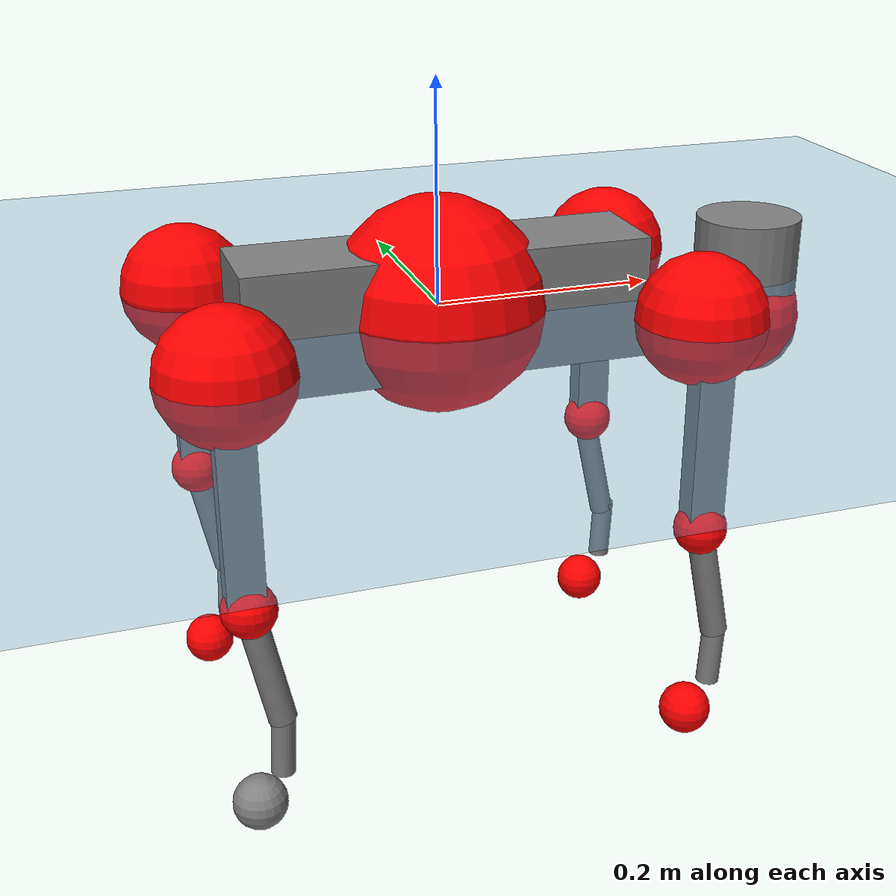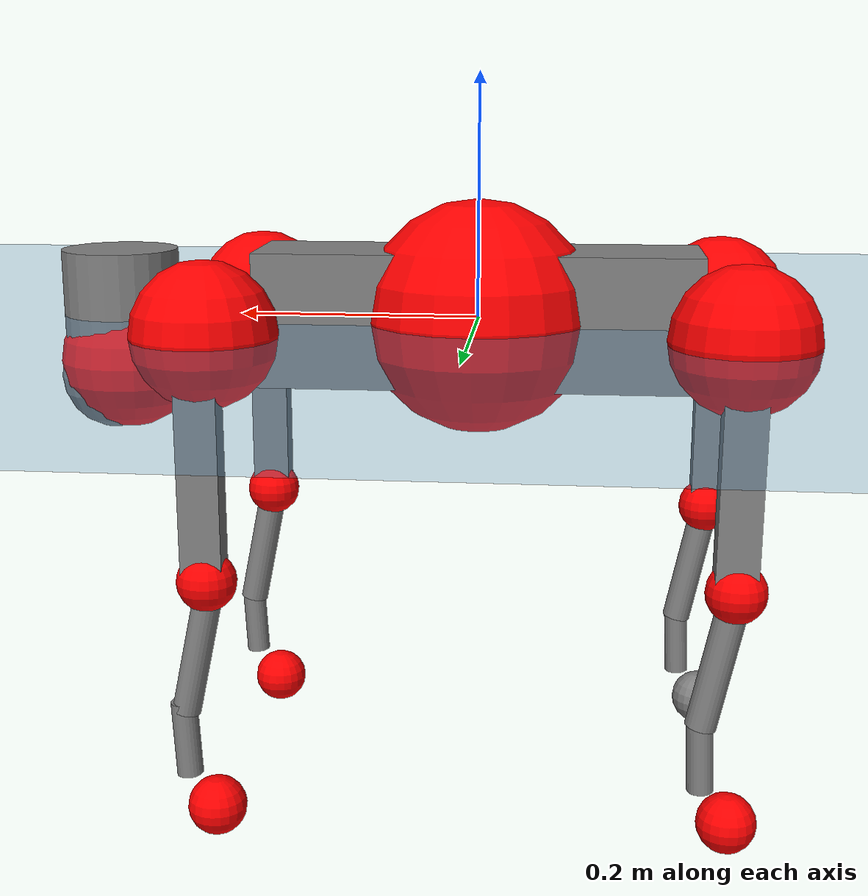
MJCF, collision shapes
<mujoco model="go2">
  <compiler angle="radian" assetdir="assets" balanceinertia="true" inertiafromgeom="false"/>

  <option timestep="0.005" density="1.2" viscosity="2e-05"/>

  <size nkey="1"/>

  <visual>
    <quality shadowsize="8192"/>
    <map shadowclip="0.5"/>
  </visual>

  <default>
    <default class="/">
      <geom contype="0" conaffinity="0" group="1" solref="-1000 -80"/>
      <site size="0.01 0.005 0.005" group="5"/>
      <general forcelimited="true" biastype="affine" gainprm="20" biasprm="0 -20 -0.5"/>
      <default class="go2">
        <joint armature="0.01" damping="0.01" frictionloss="0.2"/>
        <geom condim="1" margin="0.001"/>
        <default class="visual">
          <geom type="mesh" group="2"/>
        </default>
        <default class="collision">
          <geom group="3"/>
          <default class="foot">
            <geom size="0.022 0 0" condim="6" priority="1" friction="0.8 0.02 0.01" solimp="0.015 1 0.022"/>
          </default>
        </default>
        <default class="reward_collision_sphere">
          <geom group="5" rgba="1 0 0 1"/>
        </default>
      </default>
    </default>
  </default>

  <asset>
    <texture type="skybox" colorspace="auto" name="//unnamed_texture_0" builtin="gradient" rgb1="0.95 0.95 0.95" rgb2="0.95 0.95 0.95" width="100" height="600"/>
    <texture type="2d" colorspace="auto" name="texplane" builtin="checker" rgb1="0.345 0.575 0.748" rgb2="0.345 0.575 0.748" markrgb="1 1 1" width="512" height="512"/>
    <material name="MatPlane" class="/" texture="texplane" texuniform="true" texrepeat="2 2" specular="0.9"/>
    <material name="metal" class="/" rgba="0.9 0.95 0.95 1"/>
    <material name="black" class="/" rgba="0 0 0 1"/>
    <material name="white" class="/"/>
    <material name="gray" class="/" rgba="0.671705 0.692426 0.77427 1"/>
    <mesh name="base_0" class="/" file="base_0.obj"/>
    <mesh name="base_1" class="/" file="base_1.obj"/>
    <mesh name="base_2" class="/" file="base_2.obj"/>
    <mesh name="base_3" class="/" file="base_3.obj"/>
    <mesh name="base_4" class="/" file="base_4.obj"/>
    <mesh name="hip_0" class="/" file="hip_0.obj"/>
    <mesh name="hip_1" class="/" file="hip_1.obj"/>
    <mesh name="thigh_0" class="/" file="thigh_0.obj"/>
    <mesh name="thigh_1" class="/" file="thigh_1.obj"/>
    <mesh name="thigh_mirror_0" class="/" file="thigh_mirror_0.obj"/>
    <mesh name="thigh_mirror_1" class="/" file="thigh_mirror_1.obj"/>
    <mesh name="calf_0" class="/" file="calf_0.obj"/>
    <mesh name="calf_1" class="/" file="calf_1.obj"/>
    <mesh name="calf_mirror_0" class="/" file="calf_mirror_0.obj"/>
    <mesh name="calf_mirror_1" class="/" file="calf_mirror_1.obj"/>
    <mesh name="foot" class="/" file="foot.obj"/>
  </asset>

  <worldbody>
    <geom name="floor" class="/" size="100 100 0.125" type="plane" group="0" material="MatPlane"/>
    <light name="toplight_shadow" class="/" pos="0 0 5" dir="0.0990148 0.0990148 -0.990148" type="directional" ambient="0.04 0.04 0.04" diffuse="0.55 0.55 0.55" specular="0.12 0.12 0.12"/>
    <light name="toplight_fill" class="/" pos="0 0 5" dir="0.0990148 0.0990148 -0.990148" type="directional" castshadow="false" ambient="0.04 0.04 0.04" diffuse="0.3 0.3 0.3" specular="0.08 0.08 0.08"/>
    <body name="trunk" childclass="go2" pos="-7.6408e-05 -0.00140287 0.000948132" quat="1 0.000486528 0.000141467 0.000507381">
      <inertial pos="0.0219763 -0.00262915 -0.00320281" quat="-0.00345144 0.713858 -0.00185821 0.70028" mass="6.30526" diaginertia="0.138977 0.0670422 0.0158145"/>
      <joint name="//unnamed_joint_0" type="free" armature="0" damping="0" frictionloss="0"/>
      <geom name="//unnamed_geom_1" class="visual" material="black" mesh="base_0"/>
      <geom name="//unnamed_geom_2" class="visual" material="black" mesh="base_1"/>
      <geom name="//unnamed_geom_3" class="visual" material="black" mesh="base_2"/>
      <geom name="//unnamed_geom_4" class="visual" material="white" mesh="base_3"/>
      <geom name="//unnamed_geom_5" class="visual" material="gray" mesh="base_4"/>
      <geom name="trunk_1" class="collision" size="0.183035 0.0454912 0.0554652" type="box"/>
      <geom name="trunk_2" class="collision" size="0.0486537 0.0437883" pos="0.304388 0 0.00917861" type="cylinder"/>
      <geom name="trunk_3" class="collision" size="0.0457345" pos="0.312933 0 -0.0550716"/>
      <geom name="//unnamed_geom_9" class="reward_collision_sphere" size="0.0973073"/>
      <geom name="//unnamed_geom_10" class="reward_collision_sphere" size="0.0583844" pos="0.299048 0 -0.0413037"/>
      <site name="imu" pos="-0.0275161 0.00258248 0.0414529" size="0.00973073"/>
      <camera name="track" pos="0 -1.86666 0" quat="0.707107 0.707107 0 0" mode="trackcom"/>
      <camera name="ego_camera" pos="0.333225 0 0.0413037" quat="-0.5 -0.5 0.5 0.5"/>
      <body name="FL_hip" pos="0.206645 0.0444641 0.000459527" quat="1 -1.6079e-06 -1.0108e-05 -2.4524e-05">
        <inertial pos="-0.00544923 -0.000145074 0.00032216" quat="0.488752 0.505798 0.501032 0.504239" mass="0.619962" diaginertia="0.00120654 0.000417093 0.000306698"/>
        <joint name="FL_hip_joint" pos="0 0 0" axis="0.999979 -0.00610525 0.00197666" stiffness="0.0157774" range="-1.0566 1.06571" armature="0.00934051" damping="0.00583689" frictionloss="0.197019"/>
        <geom name="//unnamed_geom_11" class="visual" material="metal" mesh="hip_0"/>
        <geom name="//unnamed_geom_12" class="visual" material="gray" mesh="hip_1"/>
        <geom name="//unnamed_geom_13" class="collision" size="0.0447614 0.0194615" pos="0 0.0746664 0" quat="0.707107 0.707107 0 0" type="cylinder"/>
        <geom name="//unnamed_geom_14" class="reward_collision_sphere" size="0.0583844" pos="0 0.0653331 0"/>
        <body name="FL_thigh" pos="0.000979238 0.0892747 0.000191786" quat="0.999999 0.00126999 -0.000507847 0.000209257">
          <inertial pos="-0.0048371 -0.0180414 -0.0298528" quat="0.828701 0.0863685 -0.0190582 0.552659" mass="1.06405" diaginertia="0.00798541 0.00426309 0.00057177"/>
          <joint name="FL_thigh_joint" pos="0 0 0" axis="-0.00796622 0.999916 0.0102663" stiffness="0.00351779" range="-1.5979 3.43894" armature="0.0110193" damping="0.00330609" frictionloss="0.188229"/>
          <geom name="//unnamed_geom_15" class="visual" material="metal" mesh="thigh_0"/>
          <geom name="//unnamed_geom_16" class="visual" material="gray" mesh="thigh_1"/>
          <geom name="//unnamed_geom_17" class="collision" size="0.103632 0.0119201 0.0165422" pos="0 0 -0.0977522" quat="0.707107 0 0.707107 0" type="box"/>
          <body name="FL_calf" pos="-0.00135513 -0.00165499 -0.194707" quat="1 -0.000292587 -0.000132412 -0.000142544">
            <inertial pos="0.00428136 -0.00150989 -0.131365" quat="0.712709 0.00348361 -0.00369542 0.701442" mass="0.216973" diaginertia="0.00204518 0.0010552 3.41002e-05"/>
            <joint name="FL_calf_joint" pos="0 0 0" axis="-0.00955554 0.999948 -0.00344321" stiffness="0.00967536" range="-2.67127 -0.79345" armature="0.00942048" damping="0" frictionloss="0.186301"/>
            <geom name="//unnamed_geom_18" class="visual" material="gray" mesh="calf_0"/>
            <geom name="//unnamed_geom_19" class="visual" material="black" mesh="calf_1"/>
            <geom name="FL_calf0" class="collision" size="0.0116769 0.0583844" pos="0.00854423 0 -0.0550716" quat="0.994493 0 -0.104807 0" type="cylinder"/>
            <geom name="//unnamed_geom_21" class="collision" size="0.0107038 0.0316249" pos="0.0213606 0 -0.135843" quat="0.999688 0 0.0249974 0" type="cylinder"/>
            <geom name="//unnamed_geom_22" class="visual" pos="0 0 -0.195504" quat="1 0 0 0" material="black" mesh="foot"/>
            <geom name="FL_foot" class="foot" size="0.0177156" pos="-0.00213606 0 -0.195504"/>
            <geom name="//unnamed_geom_24" class="reward_collision_sphere" size="0.0243268"/>
            <geom name="//unnamed_geom_25" class="reward_collision_sphere" size="0.0243268" pos="-0.00213606 0 -0.195504"/>
            <site name="FL_foot" class="foot" pos="-0.00213606 0 -0.195504" size="0.00973073"/>
          </body>
        </body>
      </body>
      <body name="FR_hip" pos="0.204211 -0.0431724 -0.00144677" quat="1 0.000120253 -0.000242539 -0.000264593">
        <inertial pos="-0.00554786 -0.00235593 0.000681898" quat="0.494293 0.49999 0.497741 0.507876" mass="0.630903" diaginertia="0.00120622 0.000421741 0.000310471"/>
        <joint name="FR_hip_joint" pos="0 0 0" axis="0.999995 0.00169153 -0.00270582" range="-1.05574 1.09793" armature="0.00977177" damping="0.00867276" frictionloss="0.184701"/>
        <geom name="//unnamed_geom_26" class="visual" pos="0 1.34765e-10 5.78036e-09" quat="4.63268e-05 1 0 0" material="metal" mesh="hip_0"/>
        <geom name="//unnamed_geom_27" class="visual" pos="0 2.18471e-10 -1.4297e-08" quat="4.63268e-05 1 0 0" material="gray" mesh="hip_1"/>
        <geom name="//unnamed_geom_28" class="collision" size="0.0447614 0.0194615" pos="0 -0.0746664 0" quat="0.707107 0.707107 0 0" type="cylinder"/>
        <geom name="//unnamed_geom_29" class="reward_collision_sphere" size="0.0583844" pos="0 -0.0653331 0"/>
        <body name="FR_thigh" pos="0.000875547 -0.0888361 8.90708e-05" quat="1 6.97552e-05 -0.000296528 -0.000244117">
          <inertial pos="-0.00340319 0.0197773 -0.0273153" quat="0.549205 -0.0199489 0.0827029 0.831346" mass="1.04606" diaginertia="0.00810778 0.00412839 0.000571229"/>
          <joint name="FR_thigh_joint" pos="0 0 0" axis="0.000822406 -0.999977 0.00666017" stiffness="0.0118239" range="-3.50168 1.55302" armature="0.00858417" damping="0.0249911" frictionloss="0.184376"/>
          <geom name="//unnamed_geom_30" class="visual" material="metal" mesh="thigh_mirror_0"/>
          <geom name="//unnamed_geom_31" class="visual" material="gray" mesh="thigh_mirror_1"/>
          <geom name="//unnamed_geom_32" class="collision" size="0.103632 0.0119201 0.0165422" pos="0 0 -0.0977522" quat="0.707107 0 0.707107 0" type="box"/>
          <body name="FR_calf" pos="0.000120206 0.000147014 -0.192273" quat="1 -0.000145755 3.1836e-05 -0.000485705">
            <inertial pos="0.00561415 0.0021076 -0.130444" quat="0.704318 -0.00356261 0.000783225 0.709875" mass="0.229589" diaginertia="0.00215422 0.00109314 3.53382e-05"/>
            <joint name="FR_calf_joint" pos="0 0 0" axis="-0.0062824 -0.999963 -0.00586946" range="0.816891 2.70179" armature="0.01004" damping="0" frictionloss="0.200988"/>
            <geom name="//unnamed_geom_33" class="visual" material="gray" mesh="calf_mirror_0"/>
            <geom name="//unnamed_geom_34" class="visual" material="black" mesh="calf_mirror_1"/>
            <geom name="FR_calf0" class="collision" size="0.01265 0.0583844" pos="0.0106803 0 -0.0550716" quat="0.995004 0 -0.0998334 0" type="cylinder"/>
            <geom name="//unnamed_geom_36" class="collision" size="0.0107038 0.0316249" pos="0.0213606 0 -0.135843" quat="0.999688 0 0.0249974 0" type="cylinder"/>
            <geom name="//unnamed_geom_37" class="visual" pos="0 0 -0.195504" quat="1 0 0 0" material="black" mesh="foot"/>
            <geom name="FR_foot" class="foot" size="0.0200714" pos="-0.00213606 0 -0.195504"/>
            <geom name="//unnamed_geom_39" class="reward_collision_sphere" size="0.0243268"/>
            <geom name="//unnamed_geom_40" class="reward_collision_sphere" size="0.0243268" pos="-0.00213606 0 -0.195504"/>
            <site name="FR_foot" class="foot" pos="-0.00213606 0 -0.195504" size="0.00973073"/>
          </body>
        </body>
      </body>
      <body name="RL_hip" pos="-0.207417 0.0436016 0.00199309" quat="1 -0.000115827 -0.000104503 7.77811e-05">
        <inertial pos="0.00483266 0.00296995 0.00132137" quat="0.505174 0.49523 0.496079 0.50344" mass="0.607994" diaginertia="0.00125086 0.000423759 0.000317544"/>
        <joint name="RL_hip_joint" pos="0 0 0" axis="-0.999885 0.0119686 0.00935944" stiffness="0.0123223" range="-1.00023 1.05822" armature="0.0102236" damping="0.0128442" frictionloss="0.214094"/>
        <geom name="//unnamed_geom_41" class="visual" pos="-1.30821e-09 0 -2.56439e-07" quat="4.63268e-05 0 1 0" material="metal" mesh="hip_0"/>
        <geom name="//unnamed_geom_42" class="visual" pos="-2.12076e-09 0 -2.27425e-07" quat="4.63268e-05 0 1 0" material="gray" mesh="hip_1"/>
        <geom name="//unnamed_geom_43" class="collision" size="0.0447614 0.0194615" pos="0 0.0746664 0" quat="0.707107 0.707107 0 0" type="cylinder"/>
        <geom name="//unnamed_geom_44" class="reward_collision_sphere" size="0.0583844" pos="0 0.0653331 0"/>
        <body name="RL_thigh" pos="-0.000125 0.0890659 0.00170241" quat="0.999999 -0.00023065 -0.0012823 -0.000332324">
          <inertial pos="-0.00416554 -0.0180278 -0.0305585" quat="0.834003 0.0798972 -0.0239817 0.545418" mass="1.02476" diaginertia="0.00819986 0.00416982 0.000589861"/>
          <joint name="RL_thigh_joint" pos="0 0 0" axis="-0.0051685 0.999943 0.00933616" stiffness="0.00524271" range="-0.516698 4.52941" armature="0.0103834" damping="0.0201028" frictionloss="0.188328"/>
          <geom name="//unnamed_geom_45" class="visual" material="metal" mesh="thigh_0"/>
          <geom name="//unnamed_geom_46" class="visual" material="gray" mesh="thigh_1"/>
          <geom name="//unnamed_geom_47" class="collision" size="0.103632 0.0119201 0.0165422" pos="0 0 -0.0977522" quat="0.707107 0 0.707107 0" type="box"/>
          <body name="RL_calf" pos="-0.00129424 -0.000591441 -0.193659" quat="1 0.000259454 0.000143979 0.000134158">
            <inertial pos="0.0071878 0.00186801 -0.129627" quat="0.710048 0.000841313 -0.00646458 0.704123" mass="0.223094" diaginertia="0.002009 0.00100425 3.34349e-05"/>
            <joint name="RL_calf_joint" pos="0 0 0" axis="0.0166685 0.999848 -0.00504715" stiffness="0.011675" range="-2.6684 -0.839593" armature="0.0110325" damping="0.00506864" frictionloss="0.182923"/>
            <geom name="//unnamed_geom_48" class="visual" material="gray" mesh="calf_0"/>
            <geom name="//unnamed_geom_49" class="visual" material="black" mesh="calf_1"/>
            <geom name="RL_calf0" class="collision" size="0.01265 0.0583844" pos="0.0106803 0 -0.0550716" quat="0.995004 0 -0.0998334 0" type="cylinder"/>
            <geom name="//unnamed_geom_51" class="collision" size="0.0107038 0.0316249" pos="0.0213606 0 -0.135843" quat="0.999688 0 0.0249974 0" type="cylinder"/>
            <geom name="//unnamed_geom_52" class="visual" pos="0 0 -0.195504" quat="1 0 0 0" material="black" mesh="foot"/>
            <geom name="RL_foot" class="foot" size="0.0189945" pos="-0.00213606 0 -0.195504"/>
            <geom name="//unnamed_geom_54" class="reward_collision_sphere" size="0.0243268"/>
            <geom name="//unnamed_geom_55" class="reward_collision_sphere" size="0.0243268" pos="-0.00213606 0 -0.195504"/>
            <site name="RL_foot" class="foot" pos="-0.00213606 0 -0.195504" size="0.00973073"/>
          </body>
        </body>
      </body>
      <body name="RR_hip" pos="-0.20906 -0.0444881 -0.00220647" quat="0.999999 -0.000461885 0.000289774 -0.00116633">
        <inertial pos="0.00607809 -0.000880455 -0.000284162" quat="0.499625 0.496861 0.497649 0.505816" mass="0.621348" diaginertia="0.00122295 0.000415802 0.00032185"/>
        <joint name="RR_hip_joint" pos="0 0 0" axis="-0.999999 -0.000831002 -0.00130383" stiffness="0.00839825" range="-1.02882 1.07546" armature="0.0109907" damping="0.00820311" frictionloss="0.204538"/>
        <geom name="//unnamed_geom_56" class="visual" pos="1.30354e-09 1.34765e-10 -2.62219e-07" quat="2.14617e-09 4.63268e-05 4.63268e-05 -1" material="metal" mesh="hip_0"/>
        <geom name="//unnamed_geom_57" class="visual" pos="2.13229e-09 2.18471e-10 -2.13128e-07" quat="2.14617e-09 4.63268e-05 4.63268e-05 -1" material="gray" mesh="hip_1"/>
        <geom name="//unnamed_geom_58" class="collision" size="0.0447614 0.0194615" pos="0 -0.0746664 0" quat="0.707107 0.707107 0 0" type="cylinder"/>
        <geom name="//unnamed_geom_59" class="reward_collision_sphere" size="0.0583844" pos="0 -0.0653331 0"/>
        <body name="RR_thigh" pos="-0.000867993 -0.0877003 -0.00122248" quat="1 -8.70116e-06 -0.000338459 0.000212604">
          <inertial pos="-0.00400652 0.0190172 -0.0305902" quat="0.552012 -0.0172368 0.084171 0.829398" mass="1.03468" diaginertia="0.0081677 0.00413451 0.000555688"/>
          <joint name="RR_thigh_joint" pos="0 0 0" axis="0.00344923 -0.999987 0.00371402" stiffness="0.00822624" range="-4.52807 0.577534" armature="0.00844034" damping="0.0231011" frictionloss="0.190718"/>
          <geom name="//unnamed_geom_60" class="visual" material="metal" mesh="thigh_mirror_0"/>
          <geom name="//unnamed_geom_61" class="visual" material="gray" mesh="thigh_mirror_1"/>
          <geom name="//unnamed_geom_62" class="collision" size="0.103632 0.0119201 0.0165422" pos="0 0 -0.0977522" quat="0.707107 0 0.707107 0" type="box"/>
          <body name="RR_calf" pos="0.00263746 -0.000294696 -0.196758" quat="1 3.65803e-05 6.15497e-05 -8.50818e-05">
            <inertial pos="0.00602025 0.000489111 -0.129804" quat="0.703578 -0.00379773 0.00241519 0.710603" mass="0.226866" diaginertia="0.00204983 0.00104139 3.46678e-05"/>
            <joint name="RR_calf_joint" pos="0 0 0" axis="-0.00407079 -0.999991 -0.0012071" range="0.886929 2.72864" armature="0.00963136" damping="0.0147855" frictionloss="0.200291"/>
            <geom name="//unnamed_geom_63" class="visual" material="gray" mesh="calf_mirror_0"/>
            <geom name="//unnamed_geom_64" class="visual" material="black" mesh="calf_mirror_1"/>
            <geom name="RR_calf0" class="collision" size="0.01265 0.0583844" pos="0.0106803 0 -0.0550716" quat="0.995004 0 -0.0998334 0" type="cylinder"/>
            <geom name="//unnamed_geom_66" class="collision" size="0.0107038 0.0316249" pos="0.0213606 0 -0.135843" quat="0.999688 0 0.0249974 0" type="cylinder"/>
            <geom name="//unnamed_geom_67" class="visual" pos="0 0 -0.195504" quat="1 0 0 0" material="black" mesh="foot"/>
            <geom name="RR_foot" class="foot" size="0.0246711" pos="-0.00213606 0 -0.195504"/>
            <geom name="//unnamed_geom_69" class="reward_collision_sphere" size="0.0243268"/>
            <geom name="//unnamed_geom_70" class="reward_collision_sphere" size="0.0243268" pos="-0.00213606 0 -0.195504"/>
            <site name="RR_foot" class="foot" pos="-0.00213606 0 -0.195504" size="0.00973073"/>
          </body>
        </body>
      </body>
    </body>
  </worldbody>

  <contact>
    <pair class="/" geom1="floor" geom2="FL_foot" name="//unnamed_contact_0"/>
    <pair class="/" geom1="floor" geom2="FR_foot" name="//unnamed_contact_1"/>
    <pair class="/" geom1="floor" geom2="RL_foot" name="//unnamed_contact_2"/>
    <pair class="/" geom1="floor" geom2="RR_foot" name="//unnamed_contact_3"/>
  </contact>

  <actuator>
    <general name="FL_hip" class="/" joint="FL_hip_joint" forcerange="-23.0273 23.0273" gainprm="19.6471" biasprm="0 -19.6471 -0.493189"/>
    <general name="FL_thigh" class="/" joint="FL_thigh_joint" forcerange="-23.4516 23.4516" gainprm="19.6471" biasprm="0 -19.6471 -0.493189"/>
    <general name="FL_calf" class="/" joint="FL_calf_joint" forcerange="-45.0559 45.0559" gainprm="19.6471" biasprm="0 -19.6471 -0.493189"/>
    <general name="FR_hip" class="/" joint="FR_hip_joint" forcerange="-22.7509 22.7509" gainprm="19.6471" biasprm="0 -19.6471 -0.493189"/>
    <general name="FR_thigh" class="/" joint="FR_thigh_joint" forcerange="-22.5369 22.5369" gainprm="19.6471" biasprm="0 -19.6471 -0.493189"/>
    <general name="FR_calf" class="/" joint="FR_calf_joint" forcerange="-40.8861 40.8861" gainprm="19.6471" biasprm="0 -19.6471 -0.493189"/>
    <general name="RL_hip" class="/" joint="RL_hip_joint" forcerange="-23.7887 23.7887" gainprm="19.6471" biasprm="0 -19.6471 -0.493189"/>
    <general name="RL_thigh" class="/" joint="RL_thigh_joint" forcerange="-22.8043 22.8043" gainprm="19.6471" biasprm="0 -19.6471 -0.493189"/>
    <general name="RL_calf" class="/" joint="RL_calf_joint" forcerange="-42.4808 42.4808" gainprm="19.6471" biasprm="0 -19.6471 -0.493189"/>
    <general name="RR_hip" class="/" joint="RR_hip_joint" forcerange="-22.9333 22.9333" gainprm="19.6471" biasprm="0 -19.6471 -0.493189"/>
    <general name="RR_thigh" class="/" joint="RR_thigh_joint" forcerange="-22.5035 22.5035" gainprm="19.6471" biasprm="0 -19.6471 -0.493189"/>
    <general name="RR_calf" class="/" joint="RR_calf_joint" forcerange="-48.5624 48.5624" gainprm="19.6471" biasprm="0 -19.6471 -0.493189"/>
  </actuator>

  <sensor>
    <gyro site="imu" name="imu_angular_velocity"/>
    <velocimeter site="imu" name="imu_linear_velocity"/>
    <framelinvel objtype="site" objname="FL_foot" name="FL_foot_global_linear_velocity"/>
    <framelinvel objtype="site" objname="FR_foot" name="FR_foot_global_linear_velocity"/>
    <framelinvel objtype="site" objname="RL_foot" name="RL_foot_global_linear_velocity"/>
    <framelinvel objtype="site" objname="RR_foot" name="RR_foot_global_linear_velocity"/>
  </sensor>

  <keyframe>
    <key name="home" qpos="0 0 0.325 1 0 0 0 0.1 0.8 -1.5 -0.1 -0.8 1.5 -0.1 0.8 -1.5 0.1 -0.8 1.5"/>
  </keyframe>
</mujoco>
